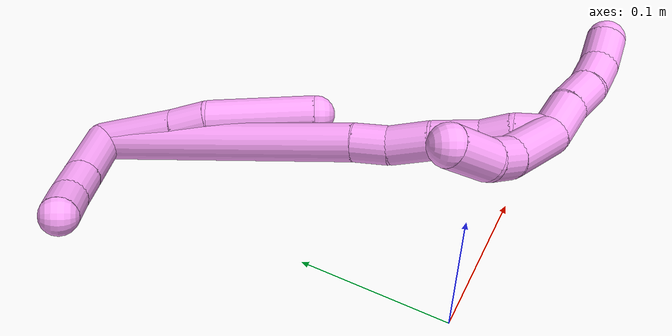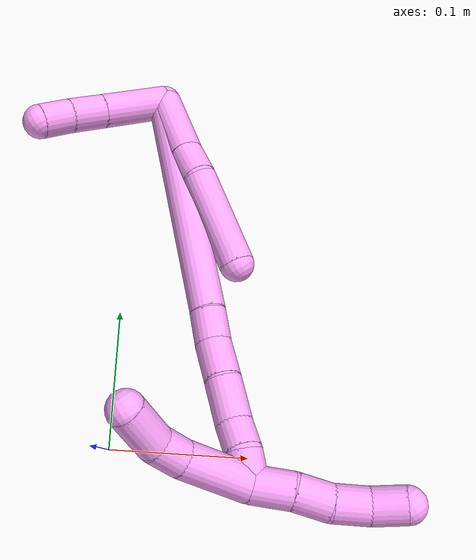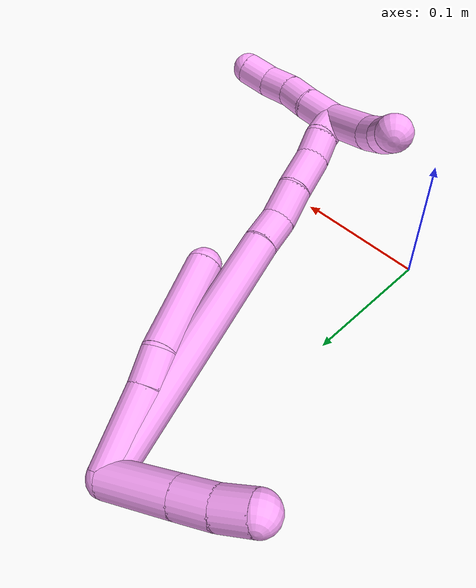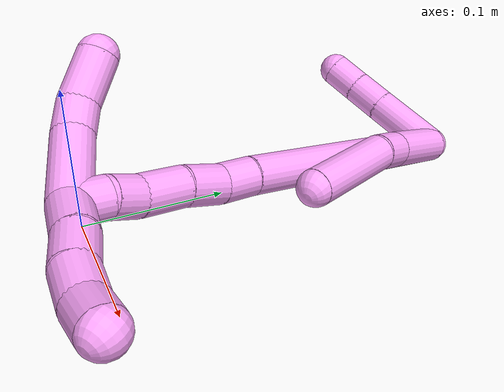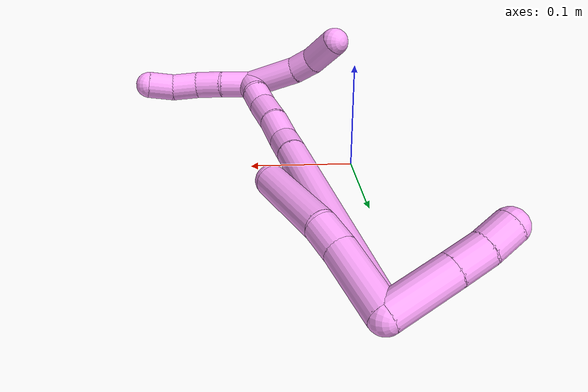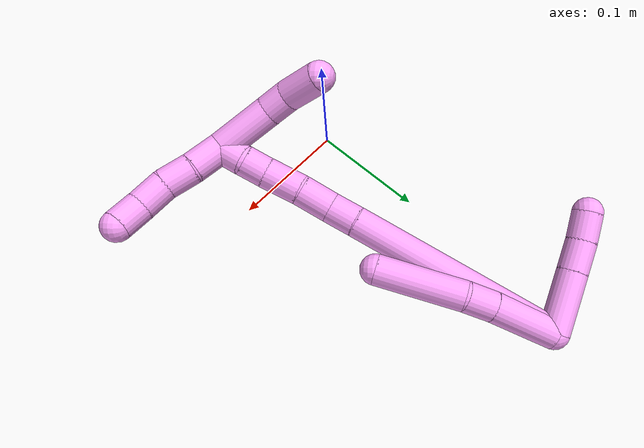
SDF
<sdf version="1.7">
 <world name="default">
  <model name="photoneo_s_sensor">
   <static>1</static>
   <pose>0 0 2 1.57079 1.57079 3.14159</pose>
   <link name="link">
    <inertial><mass>0.1</mass></inertial>
    <sensor name="sensor" type="depth">
     <update_rate>30</update_rate>
     <camera>
      <horizontal_fov>1.22</horizontal_fov>
      <image><width>1920</width><height>1200</height><format>B8G8R8</format></image>
      <clip><near>0.1</near><far>4</far></clip>
      <depth_camera><output>points</output></depth_camera>
     </camera>
     <plugin name="camera_plugin" filename="libgazebo_ros_depth_camera.so">
      <baseline>0.2</baseline>
      <alwaysOn>1</alwaysOn>
      <updateRate>0.0</updateRate>
      <cameraName>camera_ir</cameraName>
      <imageTopicName>/camera/color/image_raw</imageTopicName>
      <cameraInfoTopicName>/camera/color/camera_info</cameraInfoTopicName>
      <depthImageTopicName>/camera/depth/image_raw</depthImageTopicName>
      <depthImageCameraInfoTopicName>/camera/depth/camera_info</depthImageCameraInfoTopicName>
      <pointCloudTopicName>/camera/depth/points</pointCloudTopicName>
      <frameName>fr_optical</frameName>
      <pointCloudCutoff>0.1</pointCloudCutoff>
      <pointCloudCutoffMax>2.0</pointCloudCutoffMax>
      <distortionK1>0</distortionK1>
      <distortionK2>0</distortionK2>
      <distortionK3>0</distortionK3>
      <distortionT1>0</distortionT1>
      <distortionT2>0</distortionT2>
      <CxPrime>0</CxPrime>
      <Cx>0</Cx>
      <Cy>0</Cy>
      <focalLength>0</focalLength>
      <hackBaseline>0</hackBaseline>
     </plugin>
    </sensor>
   </link>
  </model>
  <model name="bin">
   <static>1</static>
   <link name="bottom">
    <collision name="collision-bottom">
     <pose>0 0 -0.01 0 -0 0</pose>
     <geometry><box><size>0.8 0.6 0.02</size></box></geometry>
     <surface>
      <friction><ode><mu>100</mu><mu2>100</mu2></ode></friction>
      <contact><collide_bitmask>65535</collide_bitmask></contact>
     </surface>
    </collision>
   </link>
   <link name="west_wall">
    <collision name="collision-west_wall">
     <pose>-0.41 0 0.1 0 -0 0</pose>
     <geometry><box><size>0.02 0.6 0.2</size></box></geometry>
     <surface>
      <friction><ode><mu>100</mu><mu2>100</mu2></ode></friction>
      <contact><collide_bitmask>65535</collide_bitmask></contact>
     </surface>
    </collision>
   </link>
   <link name="east_wall">
    <collision name="collision-east_wall">
     <pose>0.41 0 0.1 0 -0 0</pose>
     <geometry><box><size>0.02 0.6 0.2</size></box></geometry>
     <surface>
      <friction><ode><mu>100</mu><mu2>100</mu2></ode></friction>
      <contact><collide_bitmask>65535</collide_bitmask></contact>
     </surface>
    </collision>
   </link>
   <link name="south_wall">
    <collision name="collision-south_wall">
     <pose>0 -0.31 0.1 0 -0 0</pose>
     <geometry><box><size>0.8 0.02 0.2</size></box></geometry>
     <surface>
      <friction><ode><mu>100</mu><mu2>100</mu2></ode></friction>
      <contact><collide_bitmask>65535</collide_bitmask></contact>
     </surface>
    </collision>
   </link>
   <link name="north_wall">
    <collision name="collision-north_wall">
     <pose>0 0.31 0.1 0 -0 0</pose>
     <geometry><box><size>0.8 0.02 0.2</size></box></geometry>
     <surface>
      <friction><ode><mu>100</mu><mu2>100</mu2></ode></friction>
      <contact><collide_bitmask>65535</collide_bitmask></contact>
     </surface>
    </collision>
   </link>
  </model>
  <model name="4">
   <static>0</static>
   <link name="4">
    <collision name="collision-cylinder-e_1_2_8">
     <pose>0.002624 -0.012784 -0.023649 2.64601 0.097296 0.380235</pose>
     <geometry><cylinder><radius>0.0125</radius><length>0.054023</length></cylinder></geometry>
     <surface>
      <friction><ode><mu>1.16</mu><mu2>1.16</mu2><slip1>0</slip1><slip2>0</slip2></ode></friction>
      <contact><ode><kp>1e+06</kp><kd>1</kd><max_vel>0</max_vel><min_depth>0.001</min_depth></ode></contact>
     </surface>
    </collision>
    <visual name="visual-cylinder-e_1_2_8">
     <pose>0.002624 -0.012784 -0.023649 2.64601 0.097296 0.380235</pose>
     <geometry><cylinder><radius>0.0125</radius><length>0.054023</length></cylinder></geometry>
     <material><ambient>1 0.65098 0.996078 1</ambient></material>
    </visual>
    <collision name="collision-cylinder-e_2_8_9">
     <pose>0.007187 -0.030848 -0.057996 2.68319 0.161189 0.666577</pose>
     <geometry><cylinder><radius>0.0125</radius><length>0.024171</length></cylinder></geometry>
     <surface>
      <friction><ode><mu>1.16</mu><mu2>1.16</mu2><slip1>0</slip1><slip2>0</slip2></ode></friction>
      <contact><ode><kp>1e+06</kp><kd>1</kd><max_vel>0</max_vel><min_depth>0.001</min_depth></ode></contact>
     </surface>
    </collision>
    <visual name="visual-cylinder-e_2_8_9">
     <pose>0.007187 -0.030848 -0.057996 2.68319 0.161189 0.666577</pose>
     <geometry><cylinder><radius>0.0125</radius><length>0.024171</length></cylinder></geometry>
     <material><ambient>1 0.65098 0.996078 1</ambient></material>
    </visual>
    <collision name="collision-cylinder-e_3_9_6">
     <pose>0.009102 -0.046024 -0.103205 2.86228 -0.000688 -0.004896</pose>
     <geometry><cylinder><radius>0.0125</radius><length>0.071807</length></cylinder></geometry>
     <surface>
      <friction><ode><mu>1.16</mu><mu2>1.16</mu2><slip1>0</slip1><slip2>0</slip2></ode></friction>
      <contact><ode><kp>1e+06</kp><kd>1</kd><max_vel>0</max_vel><min_depth>0.001</min_depth></ode></contact>
     </surface>
    </collision>
    <visual name="visual-cylinder-e_3_9_6">
     <pose>0.009102 -0.046024 -0.103205 2.86228 -0.000688 -0.004896</pose>
     <geometry><cylinder><radius>0.0125</radius><length>0.071807</length></cylinder></geometry>
     <material><ambient>1 0.65098 0.996078 1</ambient></material>
    </visual>
    <collision name="collision-cylinder-e_1_2_10">
     <pose>-0.015059 -0.019321 0.006398 1.251 -0.637018 -0.46759</pose>
     <geometry><cylinder><radius>0.0125</radius><length>0.050636</length></cylinder></geometry>
     <surface>
      <friction><ode><mu>1.16</mu><mu2>1.16</mu2><slip1>0</slip1><slip2>0</slip2></ode></friction>
      <contact><ode><kp>1e+06</kp><kd>1</kd><max_vel>0</max_vel><min_depth>0.001</min_depth></ode></contact>
     </surface>
    </collision>
    <visual name="visual-cylinder-e_1_2_10">
     <pose>-0.015059 -0.019321 0.006398 1.251 -0.637018 -0.46759</pose>
     <geometry><cylinder><radius>0.0125</radius><length>0.050636</length></cylinder></geometry>
     <material><ambient>1 0.65098 0.996078 1</ambient></material>
    </visual>
    <collision name="collision-cylinder-e_2_10_11">
     <pose>-0.037663 -0.048569 0.016016 1.25721 -0.625924 -0.462096</pose>
     <geometry><cylinder><radius>0.0125</radius><length>0.025757</length></cylinder></geometry>
     <surface>
      <friction><ode><mu>1.16</mu><mu2>1.16</mu2><slip1>0</slip1><slip2>0</slip2></ode></friction>
      <contact><ode><kp>1e+06</kp><kd>1</kd><max_vel>0</max_vel><min_depth>0.001</min_depth></ode></contact>
     </surface>
    </collision>
    <visual name="visual-cylinder-e_2_10_11">
     <pose>-0.037663 -0.048569 0.016016 1.25721 -0.625924 -0.462096</pose>
     <geometry><cylinder><radius>0.0125</radius><length>0.025757</length></cylinder></geometry>
     <material><ambient>1 0.65098 0.996078 1</ambient></material>
    </visual>
    <collision name="collision-cylinder-e_3_11_5">
     <pose>-0.051523 -0.068256 0.021288 1.36355 -0.564505 -0.462304</pose>
     <geometry><cylinder><radius>0.0125</radius><length>0.023607</length></cylinder></geometry>
     <surface>
      <friction><ode><mu>1.16</mu><mu2>1.16</mu2><slip1>0</slip1><slip2>0</slip2></ode></friction>
      <contact><ode><kp>1e+06</kp><kd>1</kd><max_vel>0</max_vel><min_depth>0.001</min_depth></ode></contact>
     </surface>
    </collision>
    <visual name="visual-cylinder-e_3_11_5">
     <pose>-0.051523 -0.068256 0.021288 1.36355 -0.564505 -0.462304</pose>
     <geometry><cylinder><radius>0.0125</radius><length>0.023607</length></cylinder></geometry>
     <material><ambient>1 0.65098 0.996078 1</ambient></material>
    </visual>
    <collision name="collision-cylinder-e_1_2_12">
     <pose>-0.007197 -0.042309 -0.078024 2.64471 -0.080909 -0.316447</pose>
     <geometry><cylinder><radius>0.0125</radius><length>0.178097</length></cylinder></geometry>
     <surface>
      <friction><ode><mu>1.16</mu><mu2>1.16</mu2><slip1>0</slip1><slip2>0</slip2></ode></friction>
      <contact><ode><kp>1e+06</kp><kd>1</kd><max_vel>0</max_vel><min_depth>0.001</min_depth></ode></contact>
     </surface>
    </collision>
    <visual name="visual-cylinder-e_1_2_12">
     <pose>-0.007197 -0.042309 -0.078024 2.64471 -0.080909 -0.316447</pose>
     <geometry><cylinder><radius>0.0125</radius><length>0.178097</length></cylinder></geometry>
     <material><ambient>1 0.65098 0.996078 1</ambient></material>
    </visual>
    <collision name="collision-cylinder-e_2_12_13">
     <pose>-0.016173 -0.089524 -0.166434 2.7003 -0.153669 -0.661261</pose>
     <geometry><cylinder><radius>0.0125</radius><length>0.023246</length></cylinder></geometry>
     <surface>
      <friction><ode><mu>1.16</mu><mu2>1.16</mu2><slip1>0</slip1><slip2>0</slip2></ode></friction>
      <contact><ode><kp>1e+06</kp><kd>1</kd><max_vel>0</max_vel><min_depth>0.001</min_depth></ode></contact>
     </surface>
    </collision>
    <visual name="visual-cylinder-e_2_12_13">
     <pose>-0.016173 -0.089524 -0.166434 2.7003 -0.153669 -0.661261</pose>
     <geometry><cylinder><radius>0.0125</radius><length>0.023246</length></cylinder></geometry>
     <material><ambient>1 0.65098 0.996078 1</ambient></material>
    </visual>
    <collision name="collision-cylinder-e_3_13_14">
     <pose>-0.017526 -0.101963 -0.188388 2.56439 0.030852 0.103833</pose>
     <geometry><cylinder><radius>0.0125</radius><length>0.027622</length></cylinder></geometry>
     <surface>
      <friction><ode><mu>1.16</mu><mu2>1.16</mu2><slip1>0</slip1><slip2>0</slip2></ode></friction>
      <contact><ode><kp>1e+06</kp><kd>1</kd><max_vel>0</max_vel><min_depth>0.001</min_depth></ode></contact>
     </surface>
    </collision>
    <visual name="visual-cylinder-e_3_13_14">
     <pose>-0.017526 -0.101963 -0.188388 2.56439 0.030852 0.103833</pose>
     <geometry><cylinder><radius>0.0125</radius><length>0.027622</length></cylinder></geometry>
     <material><ambient>1 0.65098 0.996078 1</ambient></material>
    </visual>
    <collision name="collision-cylinder-e_4_14_15">
     <pose>-0.01797 -0.116163 -0.2136 2.68707 -0.057213 -0.246219</pose>
     <geometry><cylinder><radius>0.0125</radius><length>0.030421</length></cylinder></geometry>
     <surface>
      <friction><ode><mu>1.16</mu><mu2>1.16</mu2><slip1>0</slip1><slip2>0</slip2></ode></friction>
      <contact><ode><kp>1e+06</kp><kd>1</kd><max_vel>0</max_vel><min_depth>0.001</min_depth></ode></contact>
     </surface>
    </collision>
    <visual name="visual-cylinder-e_4_14_15">
     <pose>-0.01797 -0.116163 -0.2136 2.68707 -0.057213 -0.246219</pose>
     <geometry><cylinder><radius>0.0125</radius><length>0.030421</length></cylinder></geometry>
     <material><ambient>1 0.65098 0.996078 1</ambient></material>
    </visual>
    <collision name="collision-cylinder-e_5_15_16">
     <pose>-0.017708 -0.128408 -0.235487 2.54665 0.113169 0.365424</pose>
     <geometry><cylinder><radius>0.0125</radius><length>0.020035</length></cylinder></geometry>
     <surface>
      <friction><ode><mu>1.16</mu><mu2>1.16</mu2><slip1>0</slip1><slip2>0</slip2></ode></friction>
      <contact><ode><kp>1e+06</kp><kd>1</kd><max_vel>0</max_vel><min_depth>0.001</min_depth></ode></contact>
     </surface>
    </collision>
    <visual name="visual-cylinder-e_5_15_16">
     <pose>-0.017708 -0.128408 -0.235487 2.54665 0.113169 0.365424</pose>
     <geometry><cylinder><radius>0.0125</radius><length>0.020035</length></cylinder></geometry>
     <material><ambient>1 0.65098 0.996078 1</ambient></material>
    </visual>
    <collision name="collision-cylinder-e_6_16_1">
     <pose>-0.017918 -0.138528 -0.252865 2.68023 -0.130679 -0.543426</pose>
     <geometry><cylinder><radius>0.0125</radius><length>0.020579</length></cylinder></geometry>
     <surface>
      <friction><ode><mu>1.16</mu><mu2>1.16</mu2><slip1>0</slip1><slip2>0</slip2></ode></friction>
      <contact><ode><kp>1e+06</kp><kd>1</kd><max_vel>0</max_vel><min_depth>0.001</min_depth></ode></contact>
     </surface>
    </collision>
    <visual name="visual-cylinder-e_6_16_1">
     <pose>-0.017918 -0.138528 -0.252865 2.68023 -0.130679 -0.543426</pose>
     <geometry><cylinder><radius>0.0125</radius><length>0.020579</length></cylinder></geometry>
     <material><ambient>1 0.65098 0.996078 1</ambient></material>
    </visual>
    <collision name="collision-cylinder-e_1_1_17">
     <pose>-0.027855 -0.155435 -0.24367 0.593485 -0.370801 -0.114572</pose>
     <geometry><cylinder><radius>0.0125</radius><length>0.047447</length></cylinder></geometry>
     <surface>
      <friction><ode><mu>1.16</mu><mu2>1.16</mu2><slip1>0</slip1><slip2>0</slip2></ode></friction>
      <contact><ode><kp>1e+06</kp><kd>1</kd><max_vel>0</max_vel><min_depth>0.001</min_depth></ode></contact>
     </surface>
    </collision>
    <visual name="visual-cylinder-e_1_1_17">
     <pose>-0.027855 -0.155435 -0.24367 0.593485 -0.370801 -0.114572</pose>
     <geometry><cylinder><radius>0.0125</radius><length>0.047447</length></cylinder></geometry>
     <material><ambient>1 0.65098 0.996078 1</ambient></material>
    </visual>
    <collision name="collision-cylinder-e_2_17_18">
     <pose>-0.037903 -0.173661 -0.216909 0.607452 -0.140451 -0.044086</pose>
     <geometry><cylinder><radius>0.0125</radius><length>0.020738</length></cylinder></geometry>
     <surface>
      <friction><ode><mu>1.16</mu><mu2>1.16</mu2><slip1>0</slip1><slip2>0</slip2></ode></friction>
      <contact><ode><kp>1e+06</kp><kd>1</kd><max_vel>0</max_vel><min_depth>0.001</min_depth></ode></contact>
     </surface>
    </collision>
    <visual name="visual-cylinder-e_2_17_18">
     <pose>-0.037903 -0.173661 -0.216909 0.607452 -0.140451 -0.044086</pose>
     <geometry><cylinder><radius>0.0125</radius><length>0.020738</length></cylinder></geometry>
     <material><ambient>1 0.65098 0.996078 1</ambient></material>
    </visual>
    <collision name="collision-cylinder-e_3_18_4">
     <pose>-0.036695 -0.187446 -0.194945 0.529717 0.168018 0.045671</pose>
     <geometry><cylinder><radius>0.0125</radius><length>0.031814</length></cylinder></geometry>
     <surface>
      <friction><ode><mu>1.16</mu><mu2>1.16</mu2><slip1>0</slip1><slip2>0</slip2></ode></friction>
      <contact><ode><kp>1e+06</kp><kd>1</kd><max_vel>0</max_vel><min_depth>0.001</min_depth></ode></contact>
     </surface>
    </collision>
    <visual name="visual-cylinder-e_3_18_4">
     <pose>-0.036695 -0.187446 -0.194945 0.529717 0.168018 0.045671</pose>
     <geometry><cylinder><radius>0.0125</radius><length>0.031814</length></cylinder></geometry>
     <material><ambient>1 0.65098 0.996078 1</ambient></material>
    </visual>
    <collision name="collision-cylinder-e_1_1_19">
     <pose>-0.009581 -0.138229 -0.27086 -2.64159 0.764273 -2.00957</pose>
     <geometry><cylinder><radius>0.0125</radius><length>0.02797</length></cylinder></geometry>
     <surface>
      <friction><ode><mu>1.16</mu><mu2>1.16</mu2><slip1>0</slip1><slip2>0</slip2></ode></friction>
      <contact><ode><kp>1e+06</kp><kd>1</kd><max_vel>0</max_vel><min_depth>0.001</min_depth></ode></contact>
     </surface>
    </collision>
    <visual name="visual-cylinder-e_1_1_19">
     <pose>-0.009581 -0.138229 -0.27086 -2.64159 0.764273 -2.00957</pose>
     <geometry><cylinder><radius>0.0125</radius><length>0.02797</length></cylinder></geometry>
     <material><ambient>1 0.65098 0.996078 1</ambient></material>
    </visual>
    <collision name="collision-cylinder-e_2_19_20">
     <pose>0.00715 -0.129358 -0.288789 -2.72331 0.617828 -1.9678</pose>
     <geometry><cylinder><radius>0.0125</radius><length>0.024352</length></cylinder></geometry>
     <surface>
      <friction><ode><mu>1.16</mu><mu2>1.16</mu2><slip1>0</slip1><slip2>0</slip2></ode></friction>
      <contact><ode><kp>1e+06</kp><kd>1</kd><max_vel>0</max_vel><min_depth>0.001</min_depth></ode></contact>
     </surface>
    </collision>
    <visual name="visual-cylinder-e_2_19_20">
     <pose>0.00715 -0.129358 -0.288789 -2.72331 0.617828 -1.9678</pose>
     <geometry><cylinder><radius>0.0125</radius><length>0.024352</length></cylinder></geometry>
     <material><ambient>1 0.65098 0.996078 1</ambient></material>
    </visual>
    <collision name="collision-cylinder-e_3_20_21">
     <pose>0.022478 -0.119916 -0.304957 -2.49037 0.74758 -1.72014</pose>
     <geometry><cylinder><radius>0.0125</radius><length>0.024342</length></cylinder></geometry>
     <surface>
      <friction><ode><mu>1.16</mu><mu2>1.16</mu2><slip1>0</slip1><slip2>0</slip2></ode></friction>
      <contact><ode><kp>1e+06</kp><kd>1</kd><max_vel>0</max_vel><min_depth>0.001</min_depth></ode></contact>
     </surface>
    </collision>
    <visual name="visual-cylinder-e_3_20_21">
     <pose>0.022478 -0.119916 -0.304957 -2.49037 0.74758 -1.72014</pose>
     <geometry><cylinder><radius>0.0125</radius><length>0.024342</length></cylinder></geometry>
     <material><ambient>1 0.65098 0.996078 1</ambient></material>
    </visual>
    <collision name="collision-cylinder-e_4_21_3">
     <pose>0.040648 -0.111096 -0.317213 -2.55739 1.01243 -2.14763</pose>
     <geometry><cylinder><radius>0.0125</radius><length>0.023336</length></cylinder></geometry>
     <surface>
      <friction><ode><mu>1.16</mu><mu2>1.16</mu2><slip1>0</slip1><slip2>0</slip2></ode></friction>
      <contact><ode><kp>1e+06</kp><kd>1</kd><max_vel>0</max_vel><min_depth>0.001</min_depth></ode></contact>
     </surface>
    </collision>
    <visual name="visual-cylinder-e_4_21_3">
     <pose>0.040648 -0.111096 -0.317213 -2.55739 1.01243 -2.14763</pose>
     <geometry><cylinder><radius>0.0125</radius><length>0.023336</length></cylinder></geometry>
     <material><ambient>1 0.65098 0.996078 1</ambient></material>
    </visual>
    <collision name="collision-sphere-3">
     <pose>0.050544 -0.107687 -0.322369 0 -0 0</pose>
     <geometry><sphere><radius>0.0125</radius></sphere></geometry>
     <surface>
      <friction><ode><mu>1.16</mu><mu2>1.16</mu2><slip1>0</slip1><slip2>0</slip2></ode></friction>
      <contact><ode><kp>1e+06</kp><kd>1</kd><max_vel>0</max_vel><min_depth>0.001</min_depth></ode></contact>
     </surface>
    </collision>
    <visual name="visual-sphere-3">
     <pose>0.050544 -0.107687 -0.322369 0 -0 0</pose>
     <geometry><sphere><radius>0.0125</radius></sphere></geometry>
     <material><ambient>1 0.65098 0.996078 1</ambient></material>
    </visual>
    <collision name="collision-sphere-21">
     <pose>0.030753 -0.114506 -0.312056 0 -0 0</pose>
     <geometry><sphere><radius>0.0125</radius></sphere></geometry>
     <surface>
      <friction><ode><mu>1.16</mu><mu2>1.16</mu2><slip1>0</slip1><slip2>0</slip2></ode></friction>
      <contact><ode><kp>1e+06</kp><kd>1</kd><max_vel>0</max_vel><min_depth>0.001</min_depth></ode></contact>
     </surface>
    </collision>
    <visual name="visual-sphere-21">
     <pose>0.030753 -0.114506 -0.312056 0 -0 0</pose>
     <geometry><sphere><radius>0.0125</radius></sphere></geometry>
     <material><ambient>1 0.65098 0.996078 1</ambient></material>
    </visual>
    <collision name="collision-sphere-20">
     <pose>0.014203 -0.125326 -0.297859 0 -0 0</pose>
     <geometry><sphere><radius>0.0125</radius></sphere></geometry>
     <surface>
      <friction><ode><mu>1.16</mu><mu2>1.16</mu2><slip1>0</slip1><slip2>0</slip2></ode></friction>
      <contact><ode><kp>1e+06</kp><kd>1</kd><max_vel>0</max_vel><min_depth>0.001</min_depth></ode></contact>
     </surface>
    </collision>
    <visual name="visual-sphere-20">
     <pose>0.014203 -0.125326 -0.297859 0 -0 0</pose>
     <geometry><sphere><radius>0.0125</radius></sphere></geometry>
     <material><ambient>1 0.65098 0.996078 1</ambient></material>
    </visual>
    <collision name="collision-sphere-19">
     <pose>9.7e-05 -0.133389 -0.279719 0 -0 0</pose>
     <geometry><sphere><radius>0.0125</radius></sphere></geometry>
     <surface>
      <friction><ode><mu>1.16</mu><mu2>1.16</mu2><slip1>0</slip1><slip2>0</slip2></ode></friction>
      <contact><ode><kp>1e+06</kp><kd>1</kd><max_vel>0</max_vel><min_depth>0.001</min_depth></ode></contact>
     </surface>
    </collision>
    <visual name="visual-sphere-19">
     <pose>9.7e-05 -0.133389 -0.279719 0 -0 0</pose>
     <geometry><sphere><radius>0.0125</radius></sphere></geometry>
     <material><ambient>1 0.65098 0.996078 1</ambient></material>
    </visual>
    <collision name="collision-sphere-11">
     <pose>-0.045208 -0.058497 0.019236 0 -0 0</pose>
     <geometry><sphere><radius>0.0125</radius></sphere></geometry>
     <surface>
      <friction><ode><mu>1.16</mu><mu2>1.16</mu2><slip1>0</slip1><slip2>0</slip2></ode></friction>
      <contact><ode><kp>1e+06</kp><kd>1</kd><max_vel>0</max_vel><min_depth>0.001</min_depth></ode></contact>
     </surface>
    </collision>
    <visual name="visual-sphere-11">
     <pose>-0.045208 -0.058497 0.019236 0 -0 0</pose>
     <geometry><sphere><radius>0.0125</radius></sphere></geometry>
     <material><ambient>1 0.65098 0.996078 1</ambient></material>
    </visual>
    <collision name="collision-sphere-10">
     <pose>-0.030119 -0.038641 0.012797 0 -0 0</pose>
     <geometry><sphere><radius>0.0125</radius></sphere></geometry>
     <surface>
      <friction><ode><mu>1.16</mu><mu2>1.16</mu2><slip1>0</slip1><slip2>0</slip2></ode></friction>
      <contact><ode><kp>1e+06</kp><kd>1</kd><max_vel>0</max_vel><min_depth>0.001</min_depth></ode></contact>
     </surface>
    </collision>
    <visual name="visual-sphere-10">
     <pose>-0.030119 -0.038641 0.012797 0 -0 0</pose>
     <geometry><sphere><radius>0.0125</radius></sphere></geometry>
     <material><ambient>1 0.65098 0.996078 1</ambient></material>
    </visual>
    <collision name="collision-sphere-6">
     <pose>0.009078 -0.055923 -0.137717 0 -0 0</pose>
     <geometry><sphere><radius>0.0125</radius></sphere></geometry>
     <surface>
      <friction><ode><mu>1.16</mu><mu2>1.16</mu2><slip1>0</slip1><slip2>0</slip2></ode></friction>
      <contact><ode><kp>1e+06</kp><kd>1</kd><max_vel>0</max_vel><min_depth>0.001</min_depth></ode></contact>
     </surface>
    </collision>
    <visual name="visual-sphere-6">
     <pose>0.009078 -0.055923 -0.137717 0 -0 0</pose>
     <geometry><sphere><radius>0.0125</radius></sphere></geometry>
     <material><ambient>1 0.65098 0.996078 1</ambient></material>
    </visual>
    <collision name="collision-sphere-9">
     <pose>0.009127 -0.036126 -0.068693 0 -0 0</pose>
     <geometry><sphere><radius>0.0125</radius></sphere></geometry>
     <surface>
      <friction><ode><mu>1.16</mu><mu2>1.16</mu2><slip1>0</slip1><slip2>0</slip2></ode></friction>
      <contact><ode><kp>1e+06</kp><kd>1</kd><max_vel>0</max_vel><min_depth>0.001</min_depth></ode></contact>
     </surface>
    </collision>
    <visual name="visual-sphere-9">
     <pose>0.009127 -0.036126 -0.068693 0 -0 0</pose>
     <geometry><sphere><radius>0.0125</radius></sphere></geometry>
     <material><ambient>1 0.65098 0.996078 1</ambient></material>
    </visual>
    <collision name="collision-sphere-2">
     <geometry><sphere><radius>0.0125</radius></sphere></geometry>
     <surface>
      <friction><ode><mu>1.16</mu><mu2>1.16</mu2><slip1>0</slip1><slip2>0</slip2></ode></friction>
      <contact><ode><kp>1e+06</kp><kd>1</kd><max_vel>0</max_vel><min_depth>0.001</min_depth></ode></contact>
     </surface>
    </collision>
    <visual name="visual-sphere-2">
     <geometry><sphere><radius>0.0125</radius></sphere></geometry>
     <material><ambient>1 0.65098 0.996078 1</ambient></material>
    </visual>
    <collision name="collision-sphere-8">
     <pose>0.005248 -0.025569 -0.047298 0 -0 0</pose>
     <geometry><sphere><radius>0.0125</radius></sphere></geometry>
     <surface>
      <friction><ode><mu>1.16</mu><mu2>1.16</mu2><slip1>0</slip1><slip2>0</slip2></ode></friction>
      <contact><ode><kp>1e+06</kp><kd>1</kd><max_vel>0</max_vel><min_depth>0.001</min_depth></ode></contact>
     </surface>
    </collision>
    <visual name="visual-sphere-8">
     <pose>0.005248 -0.025569 -0.047298 0 -0 0</pose>
     <geometry><sphere><radius>0.0125</radius></sphere></geometry>
     <material><ambient>1 0.65098 0.996078 1</ambient></material>
    </visual>
    <collision name="collision-sphere-5">
     <pose>-0.057838 -0.078015 0.02334 0 -0 0</pose>
     <geometry><sphere><radius>0.0125</radius></sphere></geometry>
     <surface>
      <friction><ode><mu>1.16</mu><mu2>1.16</mu2><slip1>0</slip1><slip2>0</slip2></ode></friction>
      <contact><ode><kp>1e+06</kp><kd>1</kd><max_vel>0</max_vel><min_depth>0.001</min_depth></ode></contact>
     </surface>
    </collision>
    <visual name="visual-sphere-5">
     <pose>-0.057838 -0.078015 0.02334 0 -0 0</pose>
     <geometry><sphere><radius>0.0125</radius></sphere></geometry>
     <material><ambient>1 0.65098 0.996078 1</ambient></material>
    </visual>
    <collision name="collision-sphere-12">
     <pose>-0.014394 -0.084618 -0.156048 0 -0 0</pose>
     <geometry><sphere><radius>0.0125</radius></sphere></geometry>
     <surface>
      <friction><ode><mu>1.16</mu><mu2>1.16</mu2><slip1>0</slip1><slip2>0</slip2></ode></friction>
      <contact><ode><kp>1e+06</kp><kd>1</kd><max_vel>0</max_vel><min_depth>0.001</min_depth></ode></contact>
     </surface>
    </collision>
    <visual name="visual-sphere-12">
     <pose>-0.014394 -0.084618 -0.156048 0 -0 0</pose>
     <geometry><sphere><radius>0.0125</radius></sphere></geometry>
     <material><ambient>1 0.65098 0.996078 1</ambient></material>
    </visual>
    <collision name="collision-sphere-13">
     <pose>-0.017952 -0.09443 -0.176819 0 -0 0</pose>
     <geometry><sphere><radius>0.0125</radius></sphere></geometry>
     <surface>
      <friction><ode><mu>1.16</mu><mu2>1.16</mu2><slip1>0</slip1><slip2>0</slip2></ode></friction>
      <contact><ode><kp>1e+06</kp><kd>1</kd><max_vel>0</max_vel><min_depth>0.001</min_depth></ode></contact>
     </surface>
    </collision>
    <visual name="visual-sphere-13">
     <pose>-0.017952 -0.09443 -0.176819 0 -0 0</pose>
     <geometry><sphere><radius>0.0125</radius></sphere></geometry>
     <material><ambient>1 0.65098 0.996078 1</ambient></material>
    </visual>
    <collision name="collision-sphere-14">
     <pose>-0.0171 -0.109496 -0.199956 0 -0 0</pose>
     <geometry><sphere><radius>0.0125</radius></sphere></geometry>
     <surface>
      <friction><ode><mu>1.16</mu><mu2>1.16</mu2><slip1>0</slip1><slip2>0</slip2></ode></friction>
      <contact><ode><kp>1e+06</kp><kd>1</kd><max_vel>0</max_vel><min_depth>0.001</min_depth></ode></contact>
     </surface>
    </collision>
    <visual name="visual-sphere-14">
     <pose>-0.0171 -0.109496 -0.199956 0 -0 0</pose>
     <geometry><sphere><radius>0.0125</radius></sphere></geometry>
     <material><ambient>1 0.65098 0.996078 1</ambient></material>
    </visual>
    <collision name="collision-sphere-15">
     <pose>-0.01884 -0.12283 -0.227244 0 -0 0</pose>
     <geometry><sphere><radius>0.0125</radius></sphere></geometry>
     <surface>
      <friction><ode><mu>1.16</mu><mu2>1.16</mu2><slip1>0</slip1><slip2>0</slip2></ode></friction>
      <contact><ode><kp>1e+06</kp><kd>1</kd><max_vel>0</max_vel><min_depth>0.001</min_depth></ode></contact>
     </surface>
    </collision>
    <visual name="visual-sphere-15">
     <pose>-0.01884 -0.12283 -0.227244 0 -0 0</pose>
     <geometry><sphere><radius>0.0125</radius></sphere></geometry>
     <material><ambient>1 0.65098 0.996078 1</ambient></material>
    </visual>
    <collision name="collision-sphere-16">
     <pose>-0.016577 -0.133987 -0.24373 0 -0 0</pose>
     <geometry><sphere><radius>0.0125</radius></sphere></geometry>
     <surface>
      <friction><ode><mu>1.16</mu><mu2>1.16</mu2><slip1>0</slip1><slip2>0</slip2></ode></friction>
      <contact><ode><kp>1e+06</kp><kd>1</kd><max_vel>0</max_vel><min_depth>0.001</min_depth></ode></contact>
     </surface>
    </collision>
    <visual name="visual-sphere-16">
     <pose>-0.016577 -0.133987 -0.24373 0 -0 0</pose>
     <geometry><sphere><radius>0.0125</radius></sphere></geometry>
     <material><ambient>1 0.65098 0.996078 1</ambient></material>
    </visual>
    <collision name="collision-sphere-1">
     <pose>-0.019259 -0.143069 -0.262 0 -0 0</pose>
     <geometry><sphere><radius>0.0125</radius></sphere></geometry>
     <surface>
      <friction><ode><mu>1.16</mu><mu2>1.16</mu2><slip1>0</slip1><slip2>0</slip2></ode></friction>
      <contact><ode><kp>1e+06</kp><kd>1</kd><max_vel>0</max_vel><min_depth>0.001</min_depth></ode></contact>
     </surface>
    </collision>
    <visual name="visual-sphere-1">
     <pose>-0.019259 -0.143069 -0.262 0 -0 0</pose>
     <geometry><sphere><radius>0.0125</radius></sphere></geometry>
     <material><ambient>1 0.65098 0.996078 1</ambient></material>
    </visual>
    <collision name="collision-sphere-18">
     <pose>-0.039355 -0.179522 -0.208479 0 -0 0</pose>
     <geometry><sphere><radius>0.0125</radius></sphere></geometry>
     <surface>
      <friction><ode><mu>1.16</mu><mu2>1.16</mu2><slip1>0</slip1><slip2>0</slip2></ode></friction>
      <contact><ode><kp>1e+06</kp><kd>1</kd><max_vel>0</max_vel><min_depth>0.001</min_depth></ode></contact>
     </surface>
    </collision>
    <visual name="visual-sphere-18">
     <pose>-0.039355 -0.179522 -0.208479 0 -0 0</pose>
     <geometry><sphere><radius>0.0125</radius></sphere></geometry>
     <material><ambient>1 0.65098 0.996078 1</ambient></material>
    </visual>
    <collision name="collision-sphere-17">
     <pose>-0.036452 -0.167801 -0.22534 0 -0 0</pose>
     <geometry><sphere><radius>0.0125</radius></sphere></geometry>
     <surface>
      <friction><ode><mu>1.16</mu><mu2>1.16</mu2><slip1>0</slip1><slip2>0</slip2></ode></friction>
      <contact><ode><kp>1e+06</kp><kd>1</kd><max_vel>0</max_vel><min_depth>0.001</min_depth></ode></contact>
     </surface>
    </collision>
    <visual name="visual-sphere-17">
     <pose>-0.036452 -0.167801 -0.22534 0 -0 0</pose>
     <geometry><sphere><radius>0.0125</radius></sphere></geometry>
     <material><ambient>1 0.65098 0.996078 1</ambient></material>
    </visual>
    <collision name="collision-sphere-4">
     <pose>-0.034035 -0.195371 -0.181412 0 -0 0</pose>
     <geometry><sphere><radius>0.0125</radius></sphere></geometry>
     <surface>
      <friction><ode><mu>1.16</mu><mu2>1.16</mu2><slip1>0</slip1><slip2>0</slip2></ode></friction>
      <contact><ode><kp>1e+06</kp><kd>1</kd><max_vel>0</max_vel><min_depth>0.001</min_depth></ode></contact>
     </surface>
    </collision>
    <visual name="visual-sphere-4">
     <pose>-0.034035 -0.195371 -0.181412 0 -0 0</pose>
     <geometry><sphere><radius>0.0125</radius></sphere></geometry>
     <material><ambient>1 0.65098 0.996078 1</ambient></material>
    </visual>
    <inertial>
     <pose>-0.009687 -0.079253 -0.133247 0 -0 0</pose>
     <mass>0.75</mass>
     <inertia>
      <ixx>0.00038</ixx>
      <ixy>0</ixy>
      <ixz>0</ixz>
      <iyy>-0.000599</iyy>
      <iyz>0</iyz>
      <izz>0.000285</izz>
     </inertia>
    </inertial>
   </link>
   <pose>0.021279 0.264424 0.012624 -1.38407 -0.57514 0.497387</pose>
  </model>
 </world>
</sdf>
